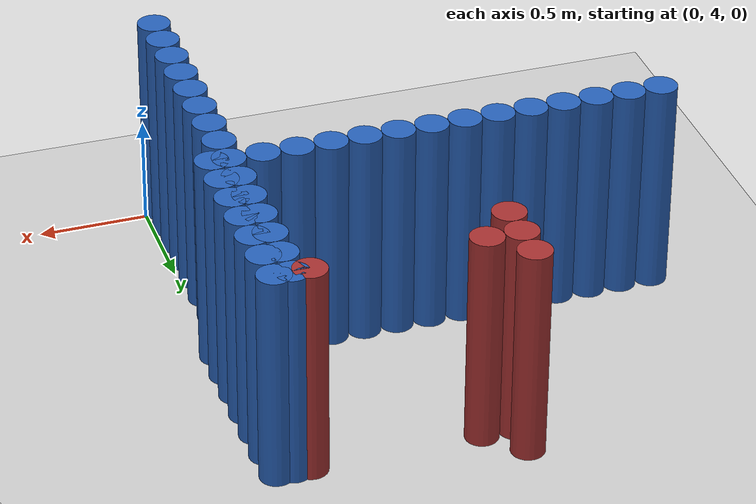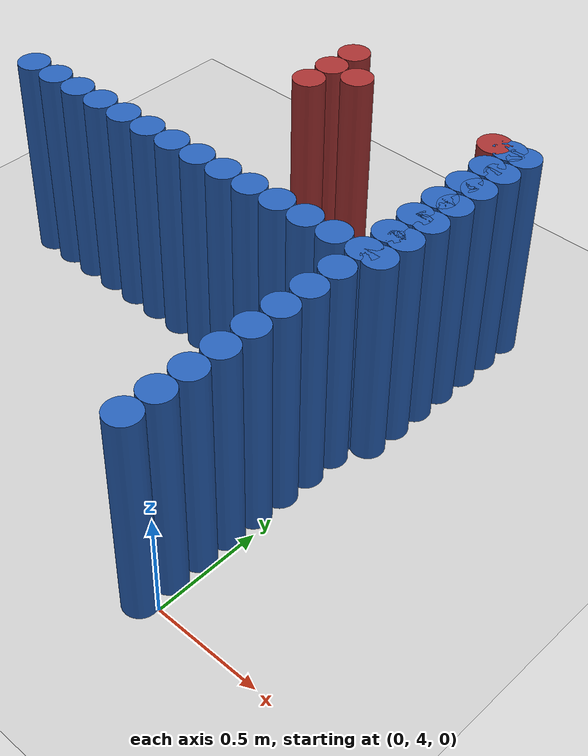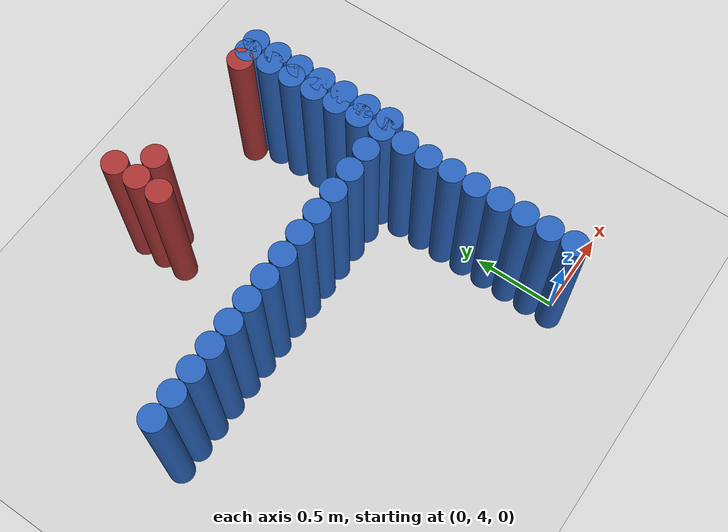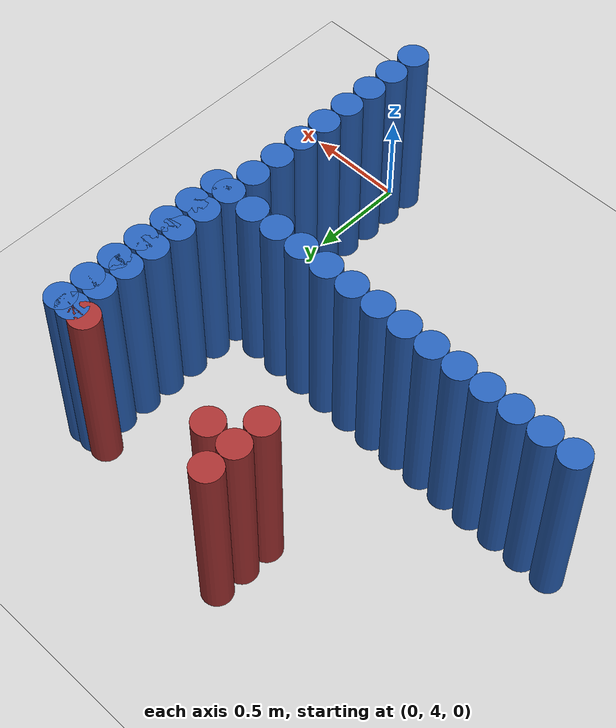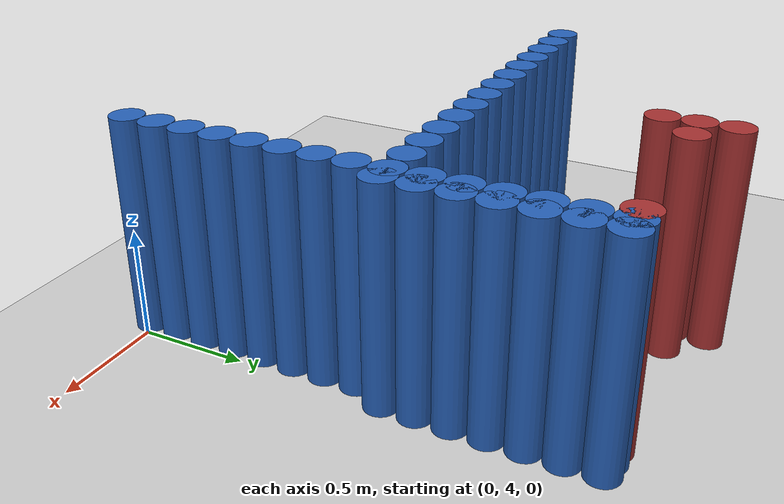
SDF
<sdf version="1.6">
 <world name="barn_world">
  <model name="ground_plane">
   <static>1</static>
   <link name="link">
    <collision name="collision">
     <geometry><plane><normal>0 0 1</normal><size>100 100</size></plane></geometry>
    </collision>
    <visual name="visual">
     <geometry><plane><normal>0 0 1</normal><size>100 100</size></plane></geometry>
     <material>
      <script><uri>file://media/materials/scripts/gazebo.material</uri><name>Gazebo/Grey</name></script>
     </material>
    </visual>
   </link>
  </model>
  <model name="unit_cylinder_80">
   <static>1</static>
   <pose>-0.0750 3.9750 0.5 0 0 0</pose>
   <link name="link">
    <collision name="collision">
     <geometry><cylinder><radius>0.075</radius><length>1</length></cylinder></geometry>
    </collision>
    <visual name="visual">
     <geometry><cylinder><radius>0.075</radius><length>1</length></cylinder></geometry>
     <material><ambient>0.152 0.379 0.72 1</ambient><diffuse>0.152 0.379 0.72 1</diffuse></material>
    </visual>
   </link>
  </model>
  <model name="unit_cylinder_82">
   <static>1</static>
   <pose>-0.0750 4.1250 0.5 0 0 0</pose>
   <link name="link">
    <collision name="collision">
     <geometry><cylinder><radius>0.075</radius><length>1</length></cylinder></geometry>
    </collision>
    <visual name="visual">
     <geometry><cylinder><radius>0.075</radius><length>1</length></cylinder></geometry>
     <material><ambient>0.152 0.379 0.72 1</ambient><diffuse>0.152 0.379 0.72 1</diffuse></material>
    </visual>
   </link>
  </model>
  <model name="unit_cylinder_84">
   <static>1</static>
   <pose>-0.0750 4.2750 0.5 0 0 0</pose>
   <link name="link">
    <collision name="collision">
     <geometry><cylinder><radius>0.075</radius><length>1</length></cylinder></geometry>
    </collision>
    <visual name="visual">
     <geometry><cylinder><radius>0.075</radius><length>1</length></cylinder></geometry>
     <material><ambient>0.152 0.379 0.72 1</ambient><diffuse>0.152 0.379 0.72 1</diffuse></material>
    </visual>
   </link>
  </model>
  <model name="unit_cylinder_86">
   <static>1</static>
   <pose>-0.0750 4.4250 0.5 0 0 0</pose>
   <link name="link">
    <collision name="collision">
     <geometry><cylinder><radius>0.075</radius><length>1</length></cylinder></geometry>
    </collision>
    <visual name="visual">
     <geometry><cylinder><radius>0.075</radius><length>1</length></cylinder></geometry>
     <material><ambient>0.152 0.379 0.72 1</ambient><diffuse>0.152 0.379 0.72 1</diffuse></material>
    </visual>
   </link>
  </model>
  <model name="unit_cylinder_88">
   <static>1</static>
   <pose>-0.0750 4.5750 0.5 0 0 0</pose>
   <link name="link">
    <collision name="collision">
     <geometry><cylinder><radius>0.075</radius><length>1</length></cylinder></geometry>
    </collision>
    <visual name="visual">
     <geometry><cylinder><radius>0.075</radius><length>1</length></cylinder></geometry>
     <material><ambient>0.152 0.379 0.72 1</ambient><diffuse>0.152 0.379 0.72 1</diffuse></material>
    </visual>
   </link>
  </model>
  <model name="unit_cylinder_90">
   <static>1</static>
   <pose>-0.0750 4.7250 0.5 0 0 0</pose>
   <link name="link">
    <collision name="collision">
     <geometry><cylinder><radius>0.075</radius><length>1</length></cylinder></geometry>
    </collision>
    <visual name="visual">
     <geometry><cylinder><radius>0.075</radius><length>1</length></cylinder></geometry>
     <material><ambient>0.152 0.379 0.72 1</ambient><diffuse>0.152 0.379 0.72 1</diffuse></material>
    </visual>
   </link>
  </model>
  <model name="unit_cylinder_92">
   <static>1</static>
   <pose>-0.0750 4.8750 0.5 0 0 0</pose>
   <link name="link">
    <collision name="collision">
     <geometry><cylinder><radius>0.075</radius><length>1</length></cylinder></geometry>
    </collision>
    <visual name="visual">
     <geometry><cylinder><radius>0.075</radius><length>1</length></cylinder></geometry>
     <material><ambient>0.152 0.379 0.72 1</ambient><diffuse>0.152 0.379 0.72 1</diffuse></material>
    </visual>
   </link>
  </model>
  <model name="unit_cylinder_94">
   <static>1</static>
   <pose>-0.0750 5.0250 0.5 0 0 0</pose>
   <link name="link">
    <collision name="collision">
     <geometry><cylinder><radius>0.075</radius><length>1</length></cylinder></geometry>
    </collision>
    <visual name="visual">
     <geometry><cylinder><radius>0.075</radius><length>1</length></cylinder></geometry>
     <material><ambient>0.152 0.379 0.72 1</ambient><diffuse>0.152 0.379 0.72 1</diffuse></material>
    </visual>
   </link>
  </model>
  <model name="unit_cylinder_96">
   <static>1</static>
   <pose>-0.0750 5.1750 0.5 0 0 0</pose>
   <link name="link">
    <collision name="collision">
     <geometry><cylinder><radius>0.075</radius><length>1</length></cylinder></geometry>
    </collision>
    <visual name="visual">
     <geometry><cylinder><radius>0.075</radius><length>1</length></cylinder></geometry>
     <material><ambient>0.152 0.379 0.72 1</ambient><diffuse>0.152 0.379 0.72 1</diffuse></material>
    </visual>
   </link>
  </model>
  <model name="unit_cylinder_97">
   <static>1</static>
   <pose>-0.2250 5.1750 0.5 0 0 0</pose>
   <link name="link">
    <collision name="collision">
     <geometry><cylinder><radius>0.075</radius><length>1</length></cylinder></geometry>
    </collision>
    <visual name="visual">
     <geometry><cylinder><radius>0.075</radius><length>1</length></cylinder></geometry>
     <material><ambient>0.152 0.379 0.72 1</ambient><diffuse>0.152 0.379 0.72 1</diffuse></material>
    </visual>
   </link>
  </model>
  <model name="unit_cylinder_98">
   <static>1</static>
   <pose>-0.3750 5.1750 0.5 0 0 0</pose>
   <link name="link">
    <collision name="collision">
     <geometry><cylinder><radius>0.075</radius><length>1</length></cylinder></geometry>
    </collision>
    <visual name="visual">
     <geometry><cylinder><radius>0.075</radius><length>1</length></cylinder></geometry>
     <material><ambient>0.152 0.379 0.72 1</ambient><diffuse>0.152 0.379 0.72 1</diffuse></material>
    </visual>
   </link>
  </model>
  <model name="unit_cylinder_99">
   <static>1</static>
   <pose>-0.5250 5.1750 0.5 0 0 0</pose>
   <link name="link">
    <collision name="collision">
     <geometry><cylinder><radius>0.075</radius><length>1</length></cylinder></geometry>
    </collision>
    <visual name="visual">
     <geometry><cylinder><radius>0.075</radius><length>1</length></cylinder></geometry>
     <material><ambient>0.152 0.379 0.72 1</ambient><diffuse>0.152 0.379 0.72 1</diffuse></material>
    </visual>
   </link>
  </model>
  <model name="unit_cylinder_100">
   <static>1</static>
   <pose>-0.6750 5.1750 0.5 0 0 0</pose>
   <link name="link">
    <collision name="collision">
     <geometry><cylinder><radius>0.075</radius><length>1</length></cylinder></geometry>
    </collision>
    <visual name="visual">
     <geometry><cylinder><radius>0.075</radius><length>1</length></cylinder></geometry>
     <material><ambient>0.152 0.379 0.72 1</ambient><diffuse>0.152 0.379 0.72 1</diffuse></material>
    </visual>
   </link>
  </model>
  <model name="unit_cylinder_101">
   <static>1</static>
   <pose>-0.8250 5.1750 0.5 0 0 0</pose>
   <link name="link">
    <collision name="collision">
     <geometry><cylinder><radius>0.075</radius><length>1</length></cylinder></geometry>
    </collision>
    <visual name="visual">
     <geometry><cylinder><radius>0.075</radius><length>1</length></cylinder></geometry>
     <material><ambient>0.152 0.379 0.72 1</ambient><diffuse>0.152 0.379 0.72 1</diffuse></material>
    </visual>
   </link>
  </model>
  <model name="unit_cylinder_102">
   <static>1</static>
   <pose>-0.9750 5.1750 0.5 0 0 0</pose>
   <link name="link">
    <collision name="collision">
     <geometry><cylinder><radius>0.075</radius><length>1</length></cylinder></geometry>
    </collision>
    <visual name="visual">
     <geometry><cylinder><radius>0.075</radius><length>1</length></cylinder></geometry>
     <material><ambient>0.152 0.379 0.72 1</ambient><diffuse>0.152 0.379 0.72 1</diffuse></material>
    </visual>
   </link>
  </model>
  <model name="unit_cylinder_103">
   <static>1</static>
   <pose>-1.1250 5.1750 0.5 0 0 0</pose>
   <link name="link">
    <collision name="collision">
     <geometry><cylinder><radius>0.075</radius><length>1</length></cylinder></geometry>
    </collision>
    <visual name="visual">
     <geometry><cylinder><radius>0.075</radius><length>1</length></cylinder></geometry>
     <material><ambient>0.152 0.379 0.72 1</ambient><diffuse>0.152 0.379 0.72 1</diffuse></material>
    </visual>
   </link>
  </model>
  <model name="unit_cylinder_104">
   <static>1</static>
   <pose>-1.2750 5.1750 0.5 0 0 0</pose>
   <link name="link">
    <collision name="collision">
     <geometry><cylinder><radius>0.075</radius><length>1</length></cylinder></geometry>
    </collision>
    <visual name="visual">
     <geometry><cylinder><radius>0.075</radius><length>1</length></cylinder></geometry>
     <material><ambient>0.152 0.379 0.72 1</ambient><diffuse>0.152 0.379 0.72 1</diffuse></material>
    </visual>
   </link>
  </model>
  <model name="unit_cylinder_105">
   <static>1</static>
   <pose>-1.4250 5.1750 0.5 0 0 0</pose>
   <link name="link">
    <collision name="collision">
     <geometry><cylinder><radius>0.075</radius><length>1</length></cylinder></geometry>
    </collision>
    <visual name="visual">
     <geometry><cylinder><radius>0.075</radius><length>1</length></cylinder></geometry>
     <material><ambient>0.152 0.379 0.72 1</ambient><diffuse>0.152 0.379 0.72 1</diffuse></material>
    </visual>
   </link>
  </model>
  <model name="unit_cylinder_106">
   <static>1</static>
   <pose>-1.5750 5.1750 0.5 0 0 0</pose>
   <link name="link">
    <collision name="collision">
     <geometry><cylinder><radius>0.075</radius><length>1</length></cylinder></geometry>
    </collision>
    <visual name="visual">
     <geometry><cylinder><radius>0.075</radius><length>1</length></cylinder></geometry>
     <material><ambient>0.152 0.379 0.72 1</ambient><diffuse>0.152 0.379 0.72 1</diffuse></material>
    </visual>
   </link>
  </model>
  <model name="unit_cylinder_107">
   <static>1</static>
   <pose>-1.7250 5.1750 0.5 0 0 0</pose>
   <link name="link">
    <collision name="collision">
     <geometry><cylinder><radius>0.075</radius><length>1</length></cylinder></geometry>
    </collision>
    <visual name="visual">
     <geometry><cylinder><radius>0.075</radius><length>1</length></cylinder></geometry>
     <material><ambient>0.152 0.379 0.72 1</ambient><diffuse>0.152 0.379 0.72 1</diffuse></material>
    </visual>
   </link>
  </model>
  <model name="unit_cylinder_108">
   <static>1</static>
   <pose>-1.8750 5.1750 0.5 0 0 0</pose>
   <link name="link">
    <collision name="collision">
     <geometry><cylinder><radius>0.075</radius><length>1</length></cylinder></geometry>
    </collision>
    <visual name="visual">
     <geometry><cylinder><radius>0.075</radius><length>1</length></cylinder></geometry>
     <material><ambient>0.152 0.379 0.72 1</ambient><diffuse>0.152 0.379 0.72 1</diffuse></material>
    </visual>
   </link>
  </model>
  <model name="unit_cylinder_109">
   <static>1</static>
   <pose>-2.0250 5.1750 0.5 0 0 0</pose>
   <link name="link">
    <collision name="collision">
     <geometry><cylinder><radius>0.075</radius><length>1</length></cylinder></geometry>
    </collision>
    <visual name="visual">
     <geometry><cylinder><radius>0.075</radius><length>1</length></cylinder></geometry>
     <material><ambient>0.152 0.379 0.72 1</ambient><diffuse>0.152 0.379 0.72 1</diffuse></material>
    </visual>
   </link>
  </model>
  <model name="unit_cylinder_181">
   <static>1</static>
   <pose>-1.0500 5.9250 0.5 0 0 0</pose>
   <link name="link">
    <collision name="collision">
     <geometry><cylinder><radius>0.075</radius><length>1</length></cylinder></geometry>
    </collision>
    <visual name="visual">
     <geometry><cylinder><radius>0.075</radius><length>1</length></cylinder></geometry>
     <material><ambient>0.648 0.192 0.192 1</ambient><diffuse>0.648 0.192 0.192 1</diffuse></material>
    </visual>
   </link>
  </model>
  <model name="unit_cylinder_182">
   <static>1</static>
   <pose>-1.0500 6.0750 0.5 0 0 0</pose>
   <link name="link">
    <collision name="collision">
     <geometry><cylinder><radius>0.075</radius><length>1</length></cylinder></geometry>
    </collision>
    <visual name="visual">
     <geometry><cylinder><radius>0.075</radius><length>1</length></cylinder></geometry>
     <material><ambient>0.648 0.192 0.192 1</ambient><diffuse>0.648 0.192 0.192 1</diffuse></material>
    </visual>
   </link>
  </model>
  <model name="unit_cylinder_183">
   <static>1</static>
   <pose>-1.0500 6.2250 0.5 0 0 0</pose>
   <link name="link">
    <collision name="collision">
     <geometry><cylinder><radius>0.075</radius><length>1</length></cylinder></geometry>
    </collision>
    <visual name="visual">
     <geometry><cylinder><radius>0.075</radius><length>1</length></cylinder></geometry>
     <material><ambient>0.648 0.192 0.192 1</ambient><diffuse>0.648 0.192 0.192 1</diffuse></material>
    </visual>
   </link>
  </model>
  <model name="unit_cylinder_184">
   <static>1</static>
   <pose>-0.9000 6.0750 0.5 0 0 0</pose>
   <link name="link">
    <collision name="collision">
     <geometry><cylinder><radius>0.075</radius><length>1</length></cylinder></geometry>
    </collision>
    <visual name="visual">
     <geometry><cylinder><radius>0.075</radius><length>1</length></cylinder></geometry>
     <material><ambient>0.648 0.192 0.192 1</ambient><diffuse>0.648 0.192 0.192 1</diffuse></material>
    </visual>
   </link>
  </model>
  <model name="unit_cylinder_192">
   <static>1</static>
   <pose>-0.1500 6.0750 0.5 0 0 0</pose>
   <link name="link">
    <collision name="collision">
     <geometry><cylinder><radius>0.075</radius><length>1</length></cylinder></geometry>
    </collision>
    <visual name="visual">
     <geometry><cylinder><radius>0.075</radius><length>1</length></cylinder></geometry>
     <material><ambient>0.648 0.192 0.192 1</ambient><diffuse>0.648 0.192 0.192 1</diffuse></material>
    </visual>
   </link>
  </model>
  <model name="unit_cylinder_204">
   <static>1</static>
   <pose>0.0000 5.1750 0.5 0 0 0</pose>
   <link name="link">
    <collision name="collision">
     <geometry><cylinder><radius>0.075</radius><length>1</length></cylinder></geometry>
    </collision>
    <visual name="visual">
     <geometry><cylinder><radius>0.075</radius><length>1</length></cylinder></geometry>
     <material><ambient>0.152 0.379 0.72 1</ambient><diffuse>0.152 0.379 0.72 1</diffuse></material>
    </visual>
   </link>
  </model>
  <model name="unit_cylinder_205">
   <static>1</static>
   <pose>0.0000 5.3250 0.5 0 0 0</pose>
   <link name="link">
    <collision name="collision">
     <geometry><cylinder><radius>0.075</radius><length>1</length></cylinder></geometry>
    </collision>
    <visual name="visual">
     <geometry><cylinder><radius>0.075</radius><length>1</length></cylinder></geometry>
     <material><ambient>0.152 0.379 0.72 1</ambient><diffuse>0.152 0.379 0.72 1</diffuse></material>
    </visual>
   </link>
  </model>
  <model name="unit_cylinder_206">
   <static>1</static>
   <pose>0.0000 5.4750 0.5 0 0 0</pose>
   <link name="link">
    <collision name="collision">
     <geometry><cylinder><radius>0.075</radius><length>1</length></cylinder></geometry>
    </collision>
    <visual name="visual">
     <geometry><cylinder><radius>0.075</radius><length>1</length></cylinder></geometry>
     <material><ambient>0.152 0.379 0.72 1</ambient><diffuse>0.152 0.379 0.72 1</diffuse></material>
    </visual>
   </link>
  </model>
  <model name="unit_cylinder_207">
   <static>1</static>
   <pose>0.0000 5.6250 0.5 0 0 0</pose>
   <link name="link">
    <collision name="collision">
     <geometry><cylinder><radius>0.075</radius><length>1</length></cylinder></geometry>
    </collision>
    <visual name="visual">
     <geometry><cylinder><radius>0.075</radius><length>1</length></cylinder></geometry>
     <material><ambient>0.152 0.379 0.72 1</ambient><diffuse>0.152 0.379 0.72 1</diffuse></material>
    </visual>
   </link>
  </model>
  <model name="unit_cylinder_208">
   <static>1</static>
   <pose>0.0000 5.7750 0.5 0 0 0</pose>
   <link name="link">
    <collision name="collision">
     <geometry><cylinder><radius>0.075</radius><length>1</length></cylinder></geometry>
    </collision>
    <visual name="visual">
     <geometry><cylinder><radius>0.075</radius><length>1</length></cylinder></geometry>
     <material><ambient>0.152 0.379 0.72 1</ambient><diffuse>0.152 0.379 0.72 1</diffuse></material>
    </visual>
   </link>
  </model>
  <model name="unit_cylinder_209">
   <static>1</static>
   <pose>0.0000 5.9250 0.5 0 0 0</pose>
   <link name="link">
    <collision name="collision">
     <geometry><cylinder><radius>0.075</radius><length>1</length></cylinder></geometry>
    </collision>
    <visual name="visual">
     <geometry><cylinder><radius>0.075</radius><length>1</length></cylinder></geometry>
     <material><ambient>0.152 0.379 0.72 1</ambient><diffuse>0.152 0.379 0.72 1</diffuse></material>
    </visual>
   </link>
  </model>
  <model name="unit_cylinder_210">
   <static>1</static>
   <pose>0.0000 6.0750 0.5 0 0 0</pose>
   <link name="link">
    <collision name="collision">
     <geometry><cylinder><radius>0.075</radius><length>1</length></cylinder></geometry>
    </collision>
    <visual name="visual">
     <geometry><cylinder><radius>0.075</radius><length>1</length></cylinder></geometry>
     <material><ambient>0.152 0.379 0.72 1</ambient><diffuse>0.152 0.379 0.72 1</diffuse></material>
    </visual>
   </link>
  </model>
  <model name="unit_cylinder_264">
   <static>1</static>
   <pose>-0.0750 5.1750 0.5 0 0 0</pose>
   <link name="link">
    <collision name="collision">
     <geometry><cylinder><radius>0.075</radius><length>1</length></cylinder></geometry>
    </collision>
    <visual name="visual">
     <geometry><cylinder><radius>0.075</radius><length>1</length></cylinder></geometry>
     <material><ambient>0.152 0.379 0.72 1</ambient><diffuse>0.152 0.379 0.72 1</diffuse></material>
    </visual>
   </link>
  </model>
  <model name="unit_cylinder_266">
   <static>1</static>
   <pose>-0.0750 5.3250 0.5 0 0 0</pose>
   <link name="link">
    <collision name="collision">
     <geometry><cylinder><radius>0.075</radius><length>1</length></cylinder></geometry>
    </collision>
    <visual name="visual">
     <geometry><cylinder><radius>0.075</radius><length>1</length></cylinder></geometry>
     <material><ambient>0.152 0.379 0.72 1</ambient><diffuse>0.152 0.379 0.72 1</diffuse></material>
    </visual>
   </link>
  </model>
  <model name="unit_cylinder_268">
   <static>1</static>
   <pose>-0.0750 5.4750 0.5 0 0 0</pose>
   <link name="link">
    <collision name="collision">
     <geometry><cylinder><radius>0.075</radius><length>1</length></cylinder></geometry>
    </collision>
    <visual name="visual">
     <geometry><cylinder><radius>0.075</radius><length>1</length></cylinder></geometry>
     <material><ambient>0.152 0.379 0.72 1</ambient><diffuse>0.152 0.379 0.72 1</diffuse></material>
    </visual>
   </link>
  </model>
  <model name="unit_cylinder_270">
   <static>1</static>
   <pose>-0.0750 5.6250 0.5 0 0 0</pose>
   <link name="link">
    <collision name="collision">
     <geometry><cylinder><radius>0.075</radius><length>1</length></cylinder></geometry>
    </collision>
    <visual name="visual">
     <geometry><cylinder><radius>0.075</radius><length>1</length></cylinder></geometry>
     <material><ambient>0.152 0.379 0.72 1</ambient><diffuse>0.152 0.379 0.72 1</diffuse></material>
    </visual>
   </link>
  </model>
  <model name="unit_cylinder_272">
   <static>1</static>
   <pose>-0.0750 5.7750 0.5 0 0 0</pose>
   <link name="link">
    <collision name="collision">
     <geometry><cylinder><radius>0.075</radius><length>1</length></cylinder></geometry>
    </collision>
    <visual name="visual">
     <geometry><cylinder><radius>0.075</radius><length>1</length></cylinder></geometry>
     <material><ambient>0.152 0.379 0.72 1</ambient><diffuse>0.152 0.379 0.72 1</diffuse></material>
    </visual>
   </link>
  </model>
  <model name="unit_cylinder_274">
   <static>1</static>
   <pose>-0.0750 5.9250 0.5 0 0 0</pose>
   <link name="link">
    <collision name="collision">
     <geometry><cylinder><radius>0.075</radius><length>1</length></cylinder></geometry>
    </collision>
    <visual name="visual">
     <geometry><cylinder><radius>0.075</radius><length>1</length></cylinder></geometry>
     <material><ambient>0.152 0.379 0.72 1</ambient><diffuse>0.152 0.379 0.72 1</diffuse></material>
    </visual>
   </link>
  </model>
  <model name="unit_cylinder_276">
   <static>1</static>
   <pose>-0.0750 6.0750 0.5 0 0 0</pose>
   <link name="link">
    <collision name="collision">
     <geometry><cylinder><radius>0.075</radius><length>1</length></cylinder></geometry>
    </collision>
    <visual name="visual">
     <geometry><cylinder><radius>0.075</radius><length>1</length></cylinder></geometry>
     <material><ambient>0.152 0.379 0.72 1</ambient><diffuse>0.152 0.379 0.72 1</diffuse></material>
    </visual>
   </link>
  </model>
 </world>
</sdf>
